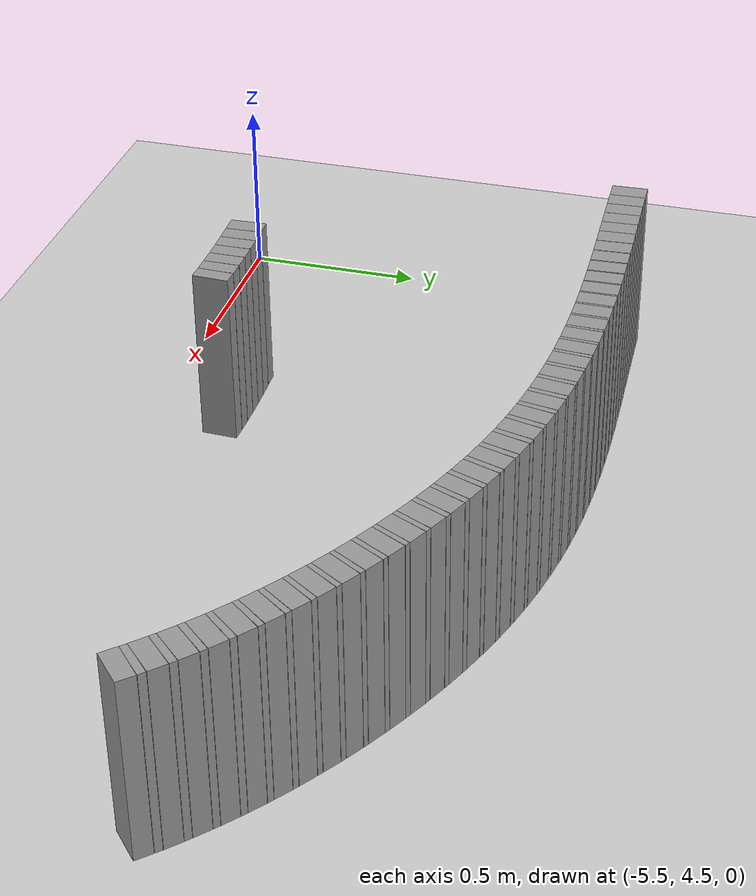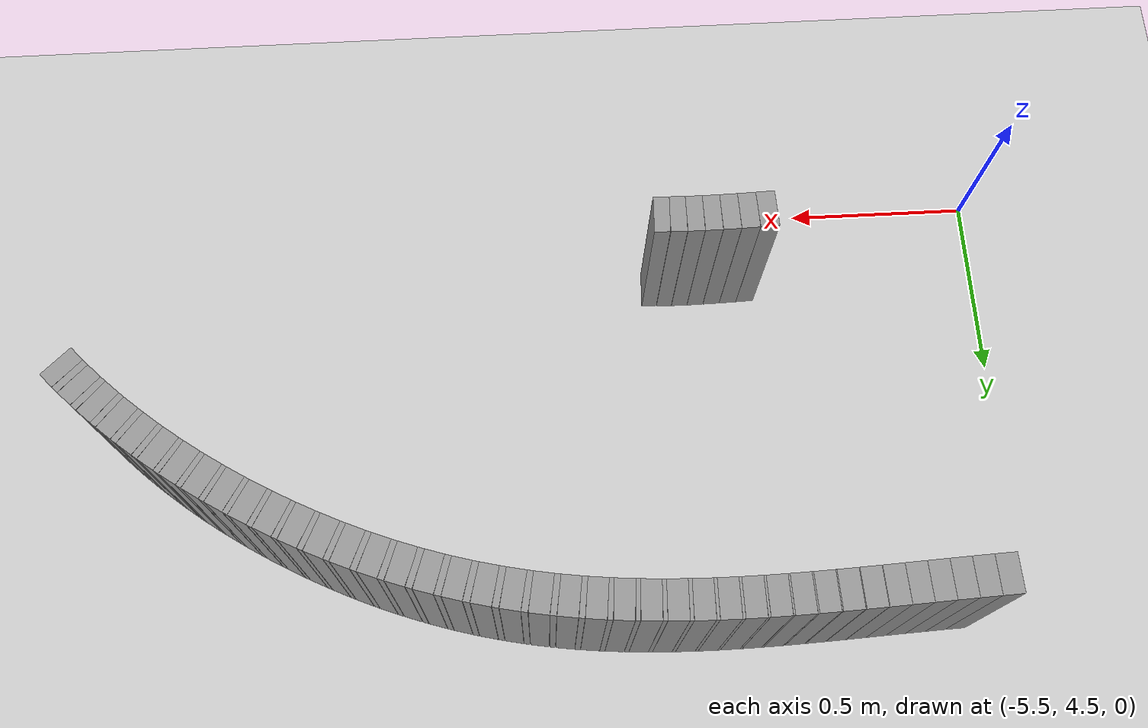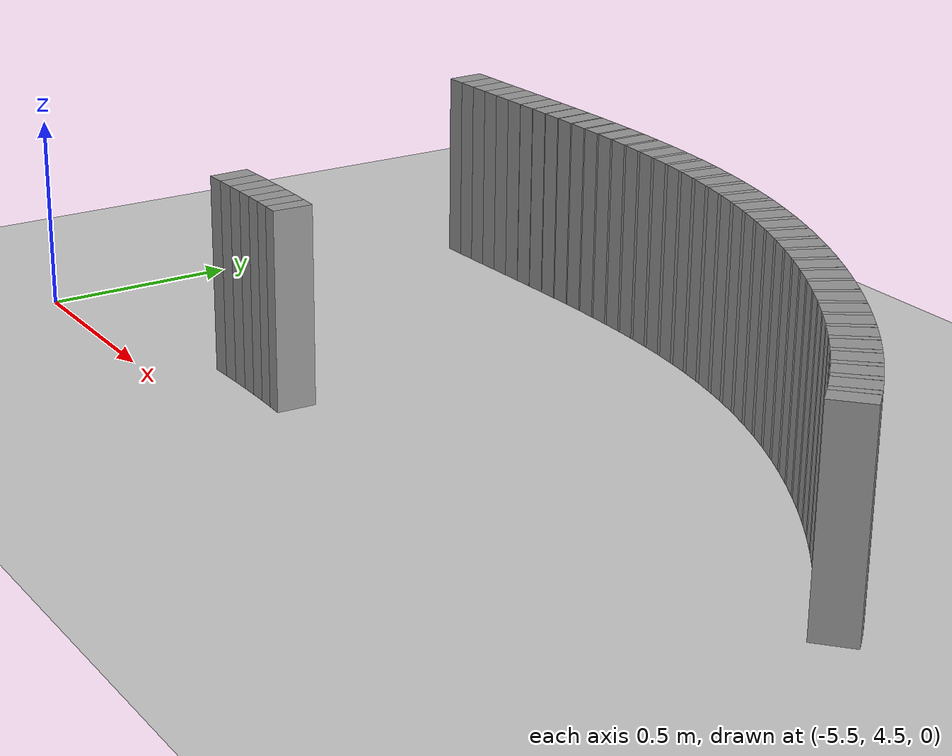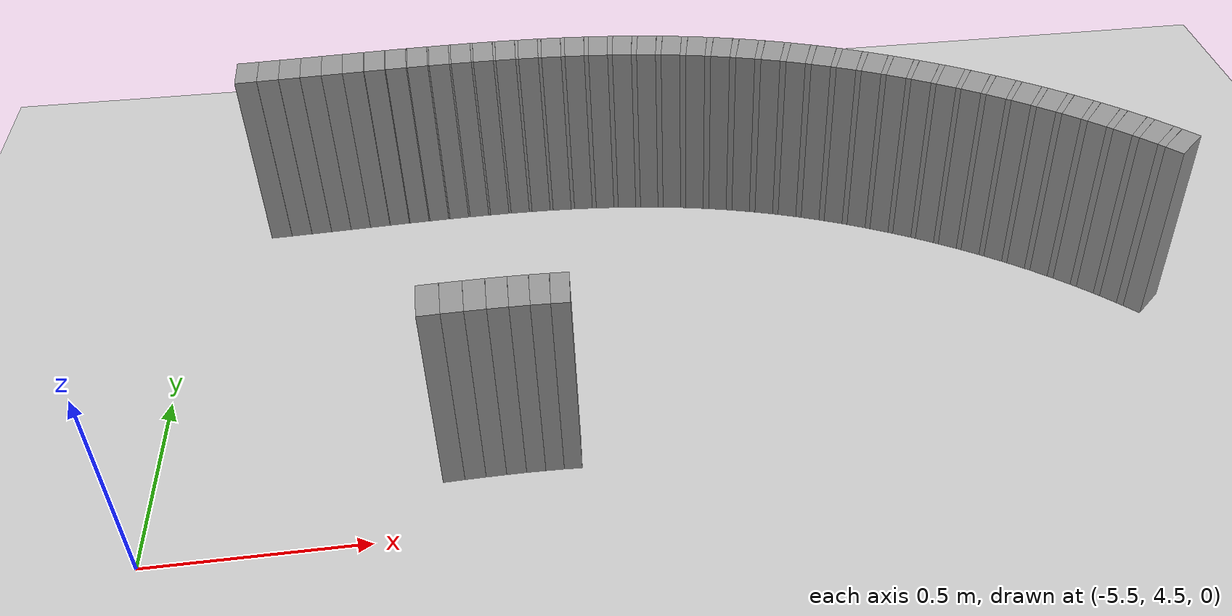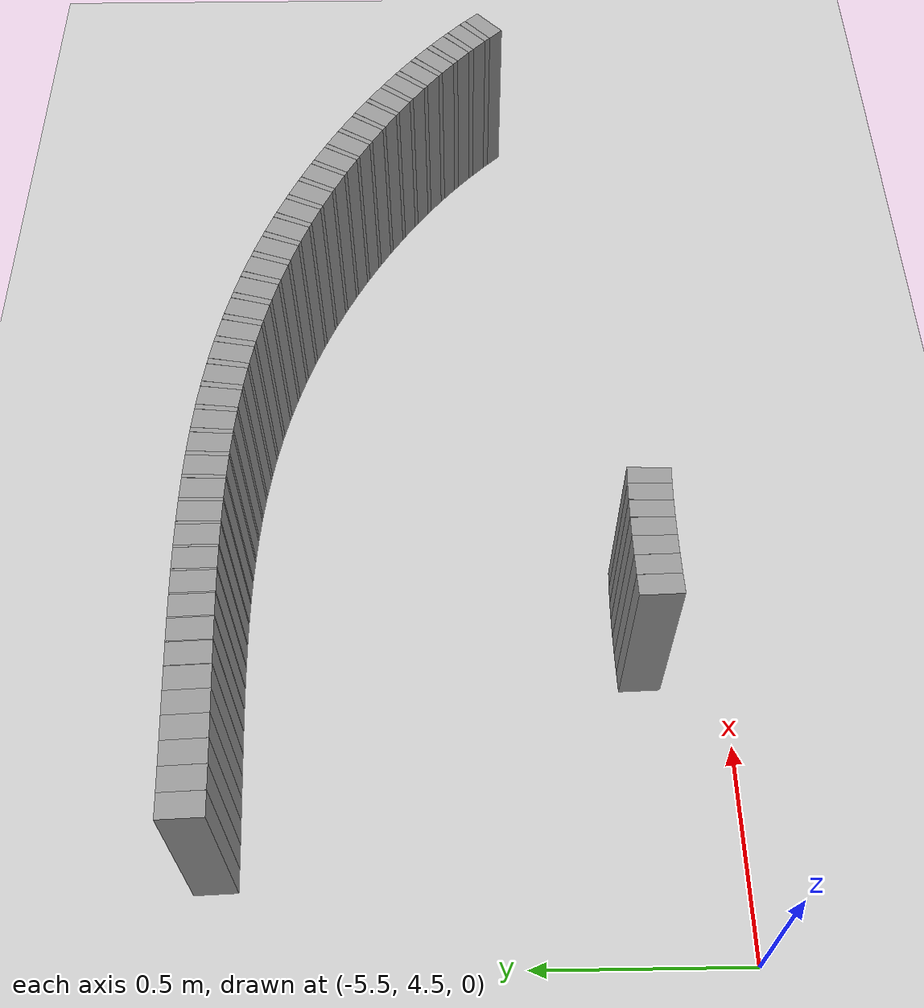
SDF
<sdf version="1.6">
 <world name="default">
  <include><uri>model://ground_plane</uri></include>
  <include><uri>model://sun</uri></include>
  <model name="wall_754_outward">
   <static>true</static>
   <link name="link">
    <collision name="collision">
     <geometry><box><size>0.05470670281031291 0.1 0.5</size></box></geometry>
    </collision>
    <visual name="visual">
     <geometry><box><size>0.05470670281031291 0.1 0.5</size></box></geometry>
     <material>
      <script><uri>file://media/materials/scripts/gazebo.material</uri><name>Gazebo/Gray</name></script>
     </material>
    </visual>
   </link>
   <pose>-5.3006299219813915 5.68774254608875 0.25 0 0 0.04072582569748732</pose>
  </model>
  <model name="wall_755_outward">
   <static>true</static>
   <link name="link">
    <collision name="collision">
     <geometry><box><size>0.054097679042840574 0.1 0.5</size></box></geometry>
    </collision>
    <visual name="visual">
     <geometry><box><size>0.054097679042840574 0.1 0.5</size></box></geometry>
     <material>
      <script><uri>file://media/materials/scripts/gazebo.material</uri><name>Gazebo/Gray</name></script>
     </material>
    </visual>
   </link>
   <pose>-5.246276919904404 5.690053437662764 0.25 0 0 0.04427557462406261</pose>
  </model>
  <model name="wall_756_outward">
   <static>true</static>
   <link name="link">
    <collision name="collision">
     <geometry><box><size>0.053771569483744175 0.1 0.5</size></box></geometry>
    </collision>
    <visual name="visual">
     <geometry><box><size>0.053771569483744175 0.1 0.5</size></box></geometry>
     <material>
      <script><uri>file://media/materials/scripts/gazebo.material</uri><name>Gazebo/Gray</name></script>
     </material>
    </visual>
   </link>
   <pose>-5.192398618591268 5.692516473386265 0.25 0 0 0.047098947879027526</pose>
  </model>
  <model name="wall_757_outward">
   <static>true</static>
   <link name="link">
    <collision name="collision">
     <geometry><box><size>0.053716895575604086 0.1 0.5</size></box></geometry>
    </collision>
    <visual name="visual">
     <geometry><box><size>0.053716895575604086 0.1 0.5</size></box></geometry>
     <material>
      <script><uri>file://media/materials/scripts/gazebo.material</uri><name>Gazebo/Gray</name></script>
     </material>
    </visual>
   </link>
   <pose>-5.138716354830655 5.695096134060477 0.25 0 0 0.04893660164620295</pose>
  </model>
  <model name="wall_758_outward">
   <static>true</static>
   <link name="link">
    <collision name="collision">
     <geometry><box><size>0.05370066168871063 0.1 0.5</size></box></geometry>
    </collision>
    <visual name="visual">
     <geometry><box><size>0.05370066168871063 0.1 0.5</size></box></geometry>
     <material>
      <script><uri>file://media/materials/scripts/gazebo.material</uri><name>Gazebo/Gray</name></script>
     </material>
    </visual>
   </link>
   <pose>-5.08507265863831 5.697739334150921 0.25 0 0 0.04953038305368396</pose>
  </model>
  <model name="wall_759_outward">
   <static>true</static>
   <link name="link">
    <collision name="collision">
     <geometry><box><size>0.0539126687379248 0.1 0.5</size></box></geometry>
    </collision>
    <visual name="visual">
     <geometry><box><size>0.0539126687379248 0.1 0.5</size></box></geometry>
     <material>
      <script><uri>file://media/materials/scripts/gazebo.material</uri><name>Gazebo/Gray</name></script>
     </material>
    </visual>
   </link>
   <pose>-5.031330870959936 5.700380729509412 0.25 0 0 0.04869172711507328</pose>
  </model>
  <model name="wall_760_outward">
   <static>true</static>
   <link name="link">
    <collision name="collision">
     <geometry><box><size>0.0012136078021173552 0.1 0.5</size></box></geometry>
    </collision>
    <visual name="visual">
     <geometry><box><size>0.0012136078021173552 0.1 0.5</size></box></geometry>
     <material>
      <script><uri>file://media/materials/scripts/gazebo.material</uri><name>Gazebo/Gray</name></script>
     </material>
    </visual>
   </link>
   <pose>-5.003800365248731 5.7017215584900445 0.25 0 0 0.047474831902274174</pose>
  </model>
  <model name="wall_761_outward">
   <static>true</static>
   <link name="link">
    <collision name="collision">
     <geometry><box><size>0.053227476023521056 0.1 0.5</size></box></geometry>
    </collision>
    <visual name="visual">
     <geometry><box><size>0.053227476023521056 0.1 0.5</size></box></geometry>
     <material>
      <script><uri>file://media/materials/scripts/gazebo.material</uri><name>Gazebo/Gray</name></script>
     </material>
    </visual>
   </link>
   <pose>-4.976608979995815 5.702981100577318 0.25 0 0 0.04626122380237999</pose>
  </model>
  <model name="wall_762_outward">
   <static>true</static>
   <link name="link">
    <collision name="collision">
     <geometry><box><size>0.002048040256482124 0.1 0.5</size></box></geometry>
    </collision>
    <visual name="visual">
     <geometry><box><size>0.002048040256482124 0.1 0.5</size></box></geometry>
     <material>
      <script><uri>file://media/materials/scripts/gazebo.material</uri><name>Gazebo/Gray</name></script>
     </material>
    </visual>
   </link>
   <pose>-4.9490006955357675 5.704257106010834 0.25 0 0 0.044213182113997794</pose>
  </model>
  <model name="wall_763_outward">
   <static>true</static>
   <link name="link">
    <collision name="collision">
     <geometry><box><size>0.05302729104950149 0.1 0.5</size></box></geometry>
    </collision>
    <visual name="visual">
     <geometry><box><size>0.05302729104950149 0.1 0.5</size></box></geometry>
     <material>
      <script><uri>file://media/materials/scripts/gazebo.material</uri><name>Gazebo/Gray</name></script>
     </material>
    </visual>
   </link>
   <pose>-4.921487596400862 5.705419986798684 0.25 0 0 0.04216514042594674</pose>
  </model>
  <model name="wall_764_outward">
   <static>true</static>
   <link name="link">
    <collision name="collision">
     <geometry><box><size>0.002923205752040813 0.1 0.5</size></box></geometry>
    </collision>
    <visual name="visual">
     <geometry><box><size>0.002923205752040813 0.1 0.5</size></box></geometry>
     <material>
      <script><uri>file://media/materials/scripts/gazebo.material</uri><name>Gazebo/Gray</name></script>
     </material>
    </visual>
   </link>
   <pose>-4.893537039039133 5.7065949485462735 0.25 0 0 0.039241930510469474</pose>
  </model>
  <model name="wall_765_outward">
   <static>true</static>
   <link name="link">
    <collision name="collision">
     <geometry><box><size>0.05286327818190272 0.1 0.5</size></box></geometry>
    </collision>
    <visual name="visual">
     <geometry><box><size>0.05286327818190272 0.1 0.5</size></box></geometry>
     <material>
      <script><uri>file://media/materials/scripts/gazebo.material</uri><name>Gazebo/Gray</name></script>
     </material>
    </visual>
   </link>
   <pose>-4.8656623527137794 5.707612042234267 0.25 0 0 0.03631872059542236</pose>
  </model>
  <model name="wall_766_outward">
   <static>true</static>
   <link name="link">
    <collision name="collision">
     <geometry><box><size>0.0038376359530731046 0.1 0.5</size></box></geometry>
    </collision>
    <visual name="visual">
     <geometry><box><size>0.0038376359530731046 0.1 0.5</size></box></geometry>
     <material>
      <script><uri>file://media/materials/scripts/gazebo.material</uri><name>Gazebo/Gray</name></script>
     </material>
    </visual>
   </link>
   <pose>-4.837330338156832 5.708634108835901 0.25 0 0 0.03248107522261644</pose>
  </model>
  <model name="wall_767_outward">
   <static>true</static>
   <link name="link">
    <collision name="collision">
     <geometry><box><size>0.05270675990037994 0.1 0.5</size></box></geometry>
    </collision>
    <visual name="visual">
     <geometry><box><size>0.05270675990037994 0.1 0.5</size></box></geometry>
     <material>
      <script><uri>file://media/materials/scripts/gazebo.material</uri><name>Gazebo/Gray</name></script>
     </material>
    </visual>
   </link>
   <pose>-4.809069962361463 5.709451171123465 0.25 0 0 0.02864342984962088</pose>
  </model>
  <model name="wall_768_outward">
   <static>true</static>
   <link name="link">
    <collision name="collision">
     <geometry><box><size>0.004793854797441563 0.1 0.5</size></box></geometry>
    </collision>
    <visual name="visual">
     <geometry><box><size>0.004793854797441563 0.1 0.5</size></box></geometry>
     <material>
      <script><uri>file://media/materials/scripts/gazebo.material</uri><name>Gazebo/Gray</name></script>
     </material>
    </visual>
   </link>
   <pose>-4.7803311466924505 5.710263079335204 0.25 0 0 0.023849556690694888</pose>
  </model>
  <model name="wall_769_outward">
   <static>true</static>
   <link name="link">
    <collision name="collision">
     <geometry><box><size>0.052538078603581964 0.1 0.5</size></box></geometry>
    </collision>
    <visual name="visual">
     <geometry><box><size>0.052538078603581964 0.1 0.5</size></box></geometry>
     <material>
      <script><uri>file://media/materials/scripts/gazebo.material</uri><name>Gazebo/Gray</name></script>
     </material>
    </visual>
   </link>
   <pose>-4.751670630897707 5.710820783777397 0.25 0 0 0.01905568353176244</pose>
  </model>
  <model name="wall_770_outward">
   <static>true</static>
   <link name="link">
    <collision name="collision">
     <geometry><box><size>0.005804564015766127 0.1 0.5</size></box></geometry>
    </collision>
    <visual name="visual">
     <geometry><box><size>0.005804564015766127 0.1 0.5</size></box></geometry>
     <material>
      <script><uri>file://media/materials/scripts/gazebo.material</uri><name>Gazebo/Gray</name></script>
     </material>
    </visual>
   </link>
   <pose>-4.722504333642352 5.711359785248543 0.25 0 0 0.013251086919930636</pose>
  </model>
  <model name="wall_771_outward">
   <static>true</static>
   <link name="link">
    <collision name="collision">
     <geometry><box><size>0.052343011538133616 0.1 0.5</size></box></geometry>
    </collision>
    <visual name="visual">
     <geometry><box><size>0.052343011538133616 0.1 0.5</size></box></geometry>
     <material>
      <script><uri>file://media/materials/scripts/gazebo.material</uri><name>Gazebo/Gray</name></script>
     </material>
    </visual>
   </link>
   <pose>-4.693431526273911 5.711593126577202 0.25 0 0 0.007446490308254661</pose>
  </model>
  <model name="wall_772_outward">
   <static>true</static>
   <link name="link">
    <collision name="collision">
     <geometry><box><size>0.006888638585046518 0.1 0.5</size></box></geometry>
    </collision>
    <visual name="visual">
     <geometry><box><size>0.006888638585046518 0.1 0.5</size></box></geometry>
     <material>
      <script><uri>file://media/materials/scripts/gazebo.material</uri><name>Gazebo/Gray</name></script>
     </material>
    </visual>
   </link>
   <pose>-4.663816427352646 5.7117899318718885 0.25 0 0 0.0005577972405423532</pose>
  </model>
  <model name="wall_773_outward">
   <static>true</static>
   <link name="link">
    <collision name="collision">
     <geometry><box><size>0.052117274290538244 0.1 0.5</size></box></geometry>
    </collision>
    <visual name="visual">
     <geometry><box><size>0.052117274290538244 0.1 0.5</size></box></geometry>
     <material>
      <script><uri>file://media/materials/scripts/gazebo.material</uri><name>Gazebo/Gray</name></script>
     </material>
    </visual>
   </link>
   <pose>-4.634313993667179 5.711626879688456 0.25 0 0 -0.006330895827137901</pose>
  </model>
  <model name="wall_774_outward">
   <static>true</static>
   <link name="link">
    <collision name="collision">
     <geometry><box><size>0.008057580469375289 0.1 0.5</size></box></geometry>
    </collision>
    <visual name="visual">
     <geometry><box><size>0.008057580469375289 0.1 0.5</size></box></geometry>
     <material>
      <script><uri>file://media/materials/scripts/gazebo.material</uri><name>Gazebo/Gray</name></script>
     </material>
    </visual>
   </link>
   <pose>-4.604227505538275 5.711403939769443 0.25 0 0 -0.014388563488224376</pose>
  </model>
  <model name="wall_775_outward">
   <static>true</static>
   <link name="link">
    <collision name="collision">
     <geometry><box><size>0.05186382484960048 0.1 0.5</size></box></geometry>
    </collision>
    <visual name="visual">
     <geometry><box><size>0.05186382484960048 0.1 0.5</size></box></geometry>
     <material>
      <script><uri>file://media/materials/scripts/gazebo.material</uri><name>Gazebo/Gray</name></script>
     </material>
    </visual>
   </link>
   <pose>-4.5742737523194785 5.710763948441915 0.25 0 0 -0.022446231149388873</pose>
  </model>
  <model name="wall_776_outward">
   <static>true</static>
   <link name="link">
    <collision name="collision">
     <geometry><box><size>0.009299625469481853 0.1 0.5</size></box></geometry>
    </collision>
    <visual name="visual">
     <geometry><box><size>0.009299625469481853 0.1 0.5</size></box></geometry>
     <material>
      <script><uri>file://media/materials/scripts/gazebo.material</uri><name>Gazebo/Gray</name></script>
     </material>
    </visual>
   </link>
   <pose>-4.543700902428359 5.710034335499582 0.25 0 0 -0.031745990667337264</pose>
  </model>
  <model name="wall_777_outward">
   <static>true</static>
   <link name="link">
    <collision name="collision">
     <geometry><box><size>0.05159517817791549 0.1 0.5</size></box></geometry>
    </collision>
    <visual name="visual">
     <geometry><box><size>0.05159517817791549 0.1 0.5</size></box></geometry>
     <material>
      <script><uri>file://media/materials/scripts/gazebo.material</uri><name>Gazebo/Gray</name></script>
     </material>
    </visual>
   </link>
   <pose>-4.513277571706778 5.708828163284427 0.25 0 0 -0.04104575018539464</pose>
  </model>
  <model name="wall_778_outward">
   <static>true</static>
   <link name="link">
    <collision name="collision">
     <geometry><box><size>0.010608063590137357 0.1 0.5</size></box></geometry>
    </collision>
    <visual name="visual">
     <geometry><box><size>0.010608063590137357 0.1 0.5</size></box></geometry>
     <material>
      <script><uri>file://media/materials/scripts/gazebo.material</uri><name>Gazebo/Gray</name></script>
     </material>
    </visual>
   </link>
   <pose>-4.482204753431254 5.7074957264793795 0.25 0 0 -0.0516540127416548</pose>
  </model>
  <model name="wall_779_outward">
   <static>true</static>
   <link name="link">
    <collision name="collision">
     <geometry><box><size>0.05132695147043053 0.1 0.5</size></box></geometry>
    </collision>
    <visual name="visual">
     <geometry><box><size>0.05132695147043053 0.1 0.5</size></box></geometry>
     <material>
      <script><uri>file://media/materials/scripts/gazebo.material</uri><name>Gazebo/Gray</name></script>
     </material>
    </visual>
   </link>
   <pose>-4.45129404760072 5.705625039558445 0.25 0 0 -0.062262275297866786</pose>
  </model>
  <model name="wall_780_outward">
   <static>true</static>
   <link name="link">
    <collision name="collision">
     <geometry><box><size>0.01194903492020911 0.1 0.5</size></box></geometry>
    </collision>
    <visual name="visual">
     <geometry><box><size>0.01194903492020911 0.1 0.5</size></box></geometry>
     <material>
      <script><uri>file://media/materials/scripts/gazebo.material</uri><name>Gazebo/Gray</name></script>
     </material>
    </visual>
   </link>
   <pose>-4.419722226098858 5.703585233740659 0.25 0 0 -0.07421159458247423</pose>
  </model>
  <model name="wall_781_outward">
   <static>true</static>
   <link name="link">
    <collision name="collision">
     <geometry><box><size>0.05108162824380521 0.1 0.5</size></box></geometry>
    </collision>
    <visual name="visual">
     <geometry><box><size>0.05108162824380521 0.1 0.5</size></box></geometry>
     <material>
      <script><uri>file://media/materials/scripts/gazebo.material</uri><name>Gazebo/Gray</name></script>
     </material>
    </visual>
   </link>
   <pose>-4.388318083954399 5.700944364030533 0.25 0 0 -0.08616091386698156</pose>
  </model>
  <model name="wall_782_outward">
   <static>true</static>
   <link name="link">
    <collision name="collision">
     <geometry><box><size>0.013267996362830194 0.1 0.5</size></box></geometry>
    </collision>
    <visual name="visual">
     <geometry><box><size>0.013267996362830194 0.1 0.5</size></box></geometry>
     <material>
      <script><uri>file://media/materials/scripts/gazebo.material</uri><name>Gazebo/Gray</name></script>
     </material>
    </visual>
   </link>
   <pose>-4.35627078218779 5.698087938440443 0.25 0 0 -0.09942929954301148</pose>
  </model>
  <model name="wall_783_outward">
   <static>true</static>
   <link name="link">
    <collision name="collision">
     <geometry><box><size>0.05088175062184712 0.1 0.5</size></box></geometry>
    </collision>
    <visual name="visual">
     <geometry><box><size>0.05088175062184712 0.1 0.5</size></box></geometry>
     <material>
      <script><uri>file://media/materials/scripts/gazebo.material</uri><name>Gazebo/Gray</name></script>
     </material>
    </visual>
   </link>
   <pose>-4.3243900625661436 5.694568348465466 0.25 0 0 -0.11269768521914508</pose>
  </model>
  <model name="wall_784_outward">
   <static>true</static>
   <link name="link">
    <collision name="collision">
     <geometry><box><size>0.014487379566992429 0.1 0.5</size></box></geometry>
    </collision>
    <visual name="visual">
     <geometry><box><size>0.014487379566992429 0.1 0.5</size></box></geometry>
     <material>
      <script><uri>file://media/materials/scripts/gazebo.material</uri><name>Gazebo/Gray</name></script>
     </material>
    </visual>
   </link>
   <pose>-4.291925394523899 5.690788474973518 0.25 0 0 -0.12718557161261015</pose>
  </model>
  <model name="wall_785_outward">
   <static>true</static>
   <link name="link">
    <collision name="collision">
     <geometry><box><size>0.05074623195494807 0.1 0.5</size></box></geometry>
    </collision>
    <visual name="visual">
     <geometry><box><size>0.05074623195494807 0.1 0.5</size></box></geometry>
     <material>
      <script><uri>file://media/materials/scripts/gazebo.material</uri><name>Gazebo/Gray</name></script>
     </material>
    </visual>
   </link>
   <pose>-4.259621308365039 5.686286979909757 0.25 0 0 -0.1416734580060665</pose>
  </model>
  <model name="wall_786_outward">
   <static>true</static>
   <link name="link">
    <collision name="collision">
     <geometry><box><size>0.015555456152363298 0.1 0.5</size></box></geometry>
    </collision>
    <visual name="visual">
     <geometry><box><size>0.015555456152363298 0.1 0.5</size></box></geometry>
     <material>
      <script><uri>file://media/materials/scripts/gazebo.material</uri><name>Gazebo/Gray</name></script>
     </material>
    </visual>
   </link>
   <pose>-4.22682061449065 5.681486439535501 0.25 0 0 -0.15722954155815158</pose>
  </model>
  <model name="wall_787_outward">
   <static>true</static>
   <link name="link">
    <collision name="collision">
     <geometry><box><size>0.05068966524538391 0.1 0.5</size></box></geometry>
    </collision>
    <visual name="visual">
     <geometry><box><size>0.05068966524538391 0.1 0.5</size></box></geometry>
     <material>
      <script><uri>file://media/materials/scripts/gazebo.material</uri><name>Gazebo/Gray</name></script>
     </material>
    </visual>
   </link>
   <pose>-4.194171386060296 5.675911118159842 0.25 0 0 -0.17278562511016382</pose>
  </model>
  <model name="wall_788_outward">
   <static>true</static>
   <link name="link">
    <collision name="collision">
     <geometry><box><size>0.01639506657148066 0.1 0.5</size></box></geometry>
    </collision>
    <visual name="visual">
     <geometry><box><size>0.01639506657148066 0.1 0.5</size></box></geometry>
     <material>
      <script><uri>file://media/materials/scripts/gazebo.material</uri><name>Gazebo/Gray</name></script>
     </material>
    </visual>
   </link>
   <pose>-4.16115266948189 5.670012066065841 0.25 0 0 -0.18918142626455825</pose>
  </model>
  <model name="wall_789_outward">
   <static>true</static>
   <link name="link">
    <collision name="collision">
     <geometry><box><size>0.05072153508281689 0.1 0.5</size></box></geometry>
    </collision>
    <visual name="visual">
     <geometry><box><size>0.05072153508281689 0.1 0.5</size></box></geometry>
     <material>
      <script><uri>file://media/materials/scripts/gazebo.material</uri><name>Gazebo/Gray</name></script>
     </material>
    </visual>
   </link>
   <pose>-4.128274638582419 5.663293528068493 0.25 0 0 -0.2055772274190114</pose>
  </model>
  <model name="wall_790_outward">
   <static>true</static>
   <link name="link">
    <collision name="collision">
     <geometry><box><size>0.016948883953568413 0.1 0.5</size></box></geometry>
    </collision>
    <visual name="visual">
     <geometry><box><size>0.016948883953568413 0.1 0.5</size></box></geometry>
     <material>
      <script><uri>file://media/materials/scripts/gazebo.material</uri><name>Gazebo/Gray</name></script>
     </material>
    </visual>
   </link>
   <pose>-4.095182398002649 5.656246310627052 0.25 0 0 -0.2225269229467355</pose>
  </model>
  <model name="wall_791_outward">
   <static>true</static>
   <link name="link">
    <collision name="collision">
     <geometry><box><size>0.05083940444672777 0.1 0.5</size></box></geometry>
    </collision>
    <visual name="visual">
     <geometry><box><size>0.05083940444672777 0.1 0.5</size></box></geometry>
     <material>
      <script><uri>file://media/materials/scripts/gazebo.material</uri><name>Gazebo/Gray</name></script>
     </material>
    </visual>
   </link>
   <pose>-4.0622226301773665 5.6483466378744005 0.25 0 0 -0.23947661847448246</pose>
  </model>
  <model name="wall_792_outward">
   <static>true</static>
   <link name="link">
    <collision name="collision">
     <geometry><box><size>0.017216249648809863 0.1 0.5</size></box></geometry>
    </collision>
    <visual name="visual">
     <geometry><box><size>0.017216249648809863 0.1 0.5</size></box></geometry>
     <material>
      <script><uri>file://media/materials/scripts/gazebo.material</uri><name>Gazebo/Gray</name></script>
     </material>
    </visual>
   </link>
   <pose>-4.029202272218141 5.640131766473027 0.25 0 0 -0.25669371871736185</pose>
  </model>
  <model name="wall_793_outward">
   <static>true</static>
   <link name="link">
    <collision name="collision">
     <geometry><box><size>0.051031347646179066 0.1 0.5</size></box></geometry>
    </collision>
    <visual name="visual">
     <geometry><box><size>0.051031347646179066 0.1 0.5</size></box></geometry>
     <material>
      <script><uri>file://media/materials/scripts/gazebo.material</uri><name>Gazebo/Gray</name></script>
     </material>
    </visual>
   </link>
   <pose>-3.996311735933641 5.631044349322247 0.25 0 0 -0.27391081896018843</pose>
  </model>
  <model name="wall_794_outward">
   <static>true</static>
   <link name="link">
    <collision name="collision">
     <geometry><box><size>0.017192357453203494 0.1 0.5</size></box></geometry>
    </collision>
    <visual name="visual">
     <geometry><box><size>0.017192357453203494 0.1 0.5</size></box></geometry>
     <material>
      <script><uri>file://media/materials/scripts/gazebo.material</uri><name>Gazebo/Gray</name></script>
     </material>
    </visual>
   </link>
   <pose>-3.9635127596655186 5.621675208259651 0.25 0 0 -0.29110402347076964</pose>
  </model>
  <model name="wall_795_outward">
   <static>true</static>
   <link name="link">
    <collision name="collision">
     <geometry><box><size>0.051277507684058254 0.1 0.5</size></box></geometry>
    </collision>
    <visual name="visual">
     <geometry><box><size>0.051277507684058254 0.1 0.5</size></box></geometry>
     <material>
      <script><uri>file://media/materials/scripts/gazebo.material</uri><name>Gazebo/Gray</name></script>
     </material>
    </visual>
   </link>
   <pose>-3.9308483143629886 5.611428283236822 0.25 0 0 -0.3082972279812897</pose>
  </model>
  <model name="wall_796_outward">
   <static>true</static>
   <link name="link">
    <collision name="collision">
     <geometry><box><size>0.016919935380718096 0.1 0.5</size></box></geometry>
    </collision>
    <visual name="visual">
     <geometry><box><size>0.016919935380718096 0.1 0.5</size></box></geometry>
     <material>
      <script><uri>file://media/materials/scripts/gazebo.material</uri><name>Gazebo/Gray</name></script>
     </material>
    </visual>
   </link>
   <pose>-3.898401880339251 5.600945457810028 0.25 0 0 -0.3252179707844851</pose>
  </model>
  <model name="wall_797_outward">
   <static>true</static>
   <link name="link">
    <collision name="collision">
     <geometry><box><size>0.05154905468149878 0.1 0.5</size></box></geometry>
    </collision>
    <visual name="visual">
     <geometry><box><size>0.05154905468149878 0.1 0.5</size></box></geometry>
     <material>
      <script><uri>file://media/materials/scripts/gazebo.material</uri><name>Gazebo/Gray</name></script>
     </material>
    </visual>
   </link>
   <pose>-3.8661047577260406 5.589594947172906 0.25 0 0 -0.34213871358758347</pose>
  </model>
  <model name="wall_798_outward">
   <static>true</static>
   <link name="link">
    <collision name="collision">
     <geometry><box><size>0.01647703830524374 0.1 0.5</size></box></geometry>
    </collision>
    <visual name="visual">
     <geometry><box><size>0.01647703830524374 0.1 0.5</size></box></geometry>
     <material>
      <script><uri>file://media/materials/scripts/gazebo.material</uri><name>Gazebo/Gray</name></script>
     </material>
    </visual>
   </link>
   <pose>-3.8341097288839157 5.578055978094596 0.25 0 0 -0.3586164975500699</pose>
  </model>
  <model name="wall_799_outward">
   <static>true</static>
   <link name="link">
    <collision name="collision">
     <geometry><box><size>0.05181211576678386 0.1 0.5</size></box></geometry>
    </collision>
    <visual name="visual">
     <geometry><box><size>0.05181211576678386 0.1 0.5</size></box></geometry>
     <material>
      <script><uri>file://media/materials/scripts/gazebo.material</uri><name>Gazebo/Gray</name></script>
     </material>
    </visual>
   </link>
   <pose>-3.802290427531662 5.565673480186381 0.25 0 0 -0.3750942815126495</pose>
  </model>
  <model name="wall_800_outward">
   <static>true</static>
   <link name="link">
    <collision name="collision">
     <geometry><box><size>0.01593200127320829 0.1 0.5</size></box></geometry>
    </collision>
    <visual name="visual">
     <geometry><box><size>0.01593200127320829 0.1 0.5</size></box></geometry>
     <material>
      <script><uri>file://media/materials/scripts/gazebo.material</uri><name>Gazebo/Gray</name></script>
     </material>
    </visual>
   </link>
   <pose>-3.7708208258786886 5.553146384160972 0.25 0 0 -0.3910269568626263</pose>
  </model>
  <model name="wall_801_outward">
   <static>true</static>
   <link name="link">
    <collision name="collision">
     <geometry><box><size>0.052033309301732535 0.1 0.5</size></box></geometry>
    </collision>
    <visual name="visual">
     <geometry><box><size>0.052033309301732535 0.1 0.5</size></box></geometry>
     <material>
      <script><uri>file://media/materials/scripts/gazebo.material</uri><name>Gazebo/Gray</name></script>
     </material>
    </visual>
   </link>
   <pose>-3.7395642783579044 5.539812349195075 0.25 0 0 -0.40695963221261316</pose>
  </model>
  <model name="wall_802_outward">
   <static>true</static>
   <link name="link">
    <collision name="collision">
     <geometry><box><size>0.015364441781334594 0.1 0.5</size></box></geometry>
    </collision>
    <visual name="visual">
     <geometry><box><size>0.015364441781334594 0.1 0.5</size></box></geometry>
     <material>
      <script><uri>file://media/materials/scripts/gazebo.material</uri><name>Gazebo/Gray</name></script>
     </material>
    </visual>
   </link>
   <pose>-3.70866519297403 5.526365656259216 0.25 0 0 -0.4223246785620134</pose>
  </model>
  <model name="wall_803_outward">
   <static>true</static>
   <link name="link">
    <collision name="collision">
     <geometry><box><size>0.05217903468702439 0.1 0.5</size></box></geometry>
    </collision>
    <visual name="visual">
     <geometry><box><size>0.05217903468702439 0.1 0.5</size></box></geometry>
     <material>
      <script><uri>file://media/materials/scripts/gazebo.material</uri><name>Gazebo/Gray</name></script>
     </material>
    </visual>
   </link>
   <pose>-3.6780277988057875 5.5121588598047015 0.25 0 0 -0.43768972491152025</pose>
  </model>
  <model name="wall_804_outward">
   <static>true</static>
   <link name="link">
    <collision name="collision">
     <geometry><box><size>0.014864275594083263 0.1 0.5</size></box></geometry>
    </collision>
    <visual name="visual">
     <geometry><box><size>0.014864275594083263 0.1 0.5</size></box></geometry>
     <material>
      <script><uri>file://media/materials/scripts/gazebo.material</uri><name>Gazebo/Gray</name></script>
     </material>
    </visual>
   </link>
   <pose>-3.6477136875844756 5.497851058432783 0.25 0 0 -0.45255454792881683</pose>
  </model>
  <model name="wall_805_outward">
   <static>true</static>
   <link name="link">
    <collision name="collision">
     <geometry><box><size>0.05222377300262657 0.1 0.5</size></box></geometry>
    </collision>
    <visual name="visual">
     <geometry><box><size>0.05222377300262657 0.1 0.5</size></box></geometry>
     <material>
      <script><uri>file://media/materials/scripts/gazebo.material</uri><name>Gazebo/Gray</name></script>
     </material>
    </visual>
   </link>
   <pose>-3.6177187504354626 5.4828356519882355 0.25 0 0 -0.4674193709460384</pose>
  </model>
  <model name="wall_806_outward">
   <static>true</static>
   <link name="link">
    <collision name="collision">
     <geometry><box><size>0.014491116755006646 0.1 0.5</size></box></geometry>
    </collision>
    <visual name="visual">
     <geometry><box><size>0.014491116755006646 0.1 0.5</size></box></geometry>
     <material>
      <script><uri>file://media/materials/scripts/gazebo.material</uri><name>Gazebo/Gray</name></script>
     </material>
    </visual>
   </link>
   <pose>-3.587987412391385 5.467711931040659 0.25 0 0 -0.48191099491985373</pose>
  </model>
  <model name="wall_807_outward">
   <static>true</static>
   <link name="link">
    <collision name="collision">
     <geometry><box><size>0.05214917180498347 0.1 0.5</size></box></geometry>
    </collision>
    <visual name="visual">
     <geometry><box><size>0.05214917180498347 0.1 0.5</size></box></geometry>
     <material>
      <script><uri>file://media/materials/scripts/gazebo.material</uri><name>Gazebo/Gray</name></script>
     </material>
    </visual>
   </link>
   <pose>-3.558639620569013 5.451935383411509 0.25 0 0 -0.4964026188936905</pose>
  </model>
  <model name="wall_808_outward">
   <static>true</static>
   <link name="link">
    <collision name="collision">
     <geometry><box><size>0.01429761700045812 0.1 0.5</size></box></geometry>
    </collision>
    <visual name="visual">
     <geometry><box><size>0.01429761700045812 0.1 0.5</size></box></geometry>
     <material>
      <script><uri>file://media/materials/scripts/gazebo.material</uri><name>Gazebo/Gray</name></script>
     </material>
    </visual>
   </link>
   <pose>-3.5294755602307424 5.436022702506344 0.25 0 0 -0.5107007230631739</pose>
  </model>
  <model name="wall_809_outward">
   <static>true</static>
   <link name="link">
    <collision name="collision">
     <geometry><box><size>0.05194738704809089 0.1 0.5</size></box></geometry>
    </collision>
    <visual name="visual">
     <geometry><box><size>0.05194738704809089 0.1 0.5</size></box></geometry>
     <material>
      <script><uri>file://media/materials/scripts/gazebo.material</uri><name>Gazebo/Gray</name></script>
     </material>
    </visual>
   </link>
   <pose>-3.500763249724639 5.419510119226819 0.25 0 0 -0.524998827232687</pose>
  </model>
  <model name="wall_810_outward">
   <static>true</static>
   <link name="link">
    <collision name="collision">
     <geometry><box><size>0.014314770339410442 0.1 0.5</size></box></geometry>
    </collision>
    <visual name="visual">
     <geometry><box><size>0.014314770339410442 0.1 0.5</size></box></geometry>
     <material>
      <script><uri>file://media/materials/scripts/gazebo.material</uri><name>Gazebo/Gray</name></script>
     </material>
    </visual>
   </link>
   <pose>-3.4721461015747597 5.40281613494499 0.25 0 0 -0.5393140864967612</pose>
  </model>
  <model name="wall_811_outward">
   <static>true</static>
   <link name="link">
    <collision name="collision">
     <geometry><box><size>0.05162178617623861 0.1 0.5</size></box></geometry>
    </collision>
    <visual name="visual">
     <geometry><box><size>0.05162178617623861 0.1 0.5</size></box></geometry>
     <material>
      <script><uri>file://media/materials/scripts/gazebo.material</uri><name>Gazebo/Gray</name></script>
     </material>
    </visual>
   </link>
   <pose>-3.4440493166637642 5.385569680475886 0.25 0 0 -0.5536293457608537</pose>
  </model>
  <model name="wall_812_outward">
   <static>true</static>
   <link name="link">
    <collision name="collision">
     <geometry><box><size>0.014551373004513934 0.1 0.5</size></box></geometry>
    </collision>
    <visual name="visual">
     <geometry><box><size>0.014551373004513934 0.1 0.5</size></box></geometry>
     <material>
      <script><uri>file://media/materials/scripts/gazebo.material</uri><name>Gazebo/Gray</name></script>
     </material>
    </visual>
   </link>
   <pose>-3.415961467516329 5.368083837241318 0.25 0 0 -0.5681812323382118</pose>
  </model>
  <model name="wall_813_outward">
   <static>true</static>
   <link name="link">
    <collision name="collision">
     <geometry><box><size>0.05118643843031228 0.1 0.5</size></box></geometry>
    </collision>
    <visual name="visual">
     <geometry><box><size>0.05118643843031228 0.1 0.5</size></box></geometry>
     <material>
      <script><uri>file://media/materials/scripts/gazebo.material</uri><name>Gazebo/Gray</name></script>
     </material>
    </visual>
   </link>
   <pose>-3.3884595710983474 5.35008463653136 0.25 0 0 -0.5827331189155763</pose>
  </model>
  <model name="wall_814_outward">
   <static>true</static>
   <link name="link">
    <collision name="collision">
     <geometry><box><size>0.01500570173777579 0.1 0.5</size></box></geometry>
    </collision>
    <visual name="visual">
     <geometry><box><size>0.01500570173777579 0.1 0.5</size></box></geometry>
     <material>
      <script><uri>file://media/materials/scripts/gazebo.material</uri><name>Gazebo/Gray</name></script>
     </material>
    </visual>
   </link>
   <pose>-3.360888281797706 5.3317780633662935 0.25 0 0 -0.5977393838521131</pose>
  </model>
  <model name="wall_815_outward">
   <static>true</static>
   <link name="link">
    <collision name="collision">
     <geometry><box><size>0.050663746376103144 0.1 0.5</size></box></geometry>
    </collision>
    <visual name="visual">
     <geometry><box><size>0.050663746376103144 0.1 0.5</size></box></geometry>
     <material>
      <script><uri>file://media/materials/scripts/gazebo.material</uri><name>Gazebo/Gray</name></script>
     </material>
    </visual>
   </link>
   <pose>-3.333963053542767 5.31298688488798 0.25 0 0 -0.6127456487886445</pose>
  </model>
  <model name="wall_816_outward">
   <static>true</static>
   <link name="link">
    <collision name="collision">
     <geometry><box><size>0.015654901230396517 0.1 0.5</size></box></geometry>
    </collision>
    <visual name="visual">
     <geometry><box><size>0.015654901230396517 0.1 0.5</size></box></geometry>
     <material>
      <script><uri>file://media/materials/scripts/gazebo.material</uri><name>Gazebo/Gray</name></script>
     </material>
    </visual>
   </link>
   <pose>-3.3069075961835184 5.293816741837912 0.25 0 0 -0.6284011895294884</pose>
  </model>
  <model name="wall_817_outward">
   <static>true</static>
   <link name="link">
    <collision name="collision">
     <geometry><box><size>0.05008252970401036 0.1 0.5</size></box></geometry>
    </collision>
    <visual name="visual">
     <geometry><box><size>0.05008252970401036 0.1 0.5</size></box></geometry>
     <material>
      <script><uri>file://media/materials/scripts/gazebo.material</uri><name>Gazebo/Gray</name></script>
     </material>
    </visual>
   </link>
   <pose>-3.280550775225401 5.274179471015596 0.25 0 0 -0.6440567302703376</pose>
  </model>
  <model name="wall_818_outward">
   <static>true</static>
   <link name="link">
    <collision name="collision">
     <geometry><box><size>0.016442032040310386 0.1 0.5</size></box></geometry>
    </collision>
    <visual name="visual">
     <geometry><box><size>0.016442032040310386 0.1 0.5</size></box></geometry>
     <material>
      <script><uri>file://media/materials/scripts/gazebo.material</uri><name>Gazebo/Gray</name></script>
     </material>
    </visual>
   </link>
   <pose>-3.2540340942512813 5.254099896776067 0.25 0 0 -0.660499503225073</pose>
  </model>
  <model name="wall_819_outward">
   <static>true</static>
   <link name="link">
    <collision name="collision">
     <geometry><box><size>0.04947626422670692 0.1 0.5</size></box></geometry>
    </collision>
    <visual name="visual">
     <geometry><box><size>0.04947626422670692 0.1 0.5</size></box></geometry>
     <material>
      <script><uri>file://media/materials/scripts/gazebo.material</uri><name>Gazebo/Gray</name></script>
     </material>
    </visual>
   </link>
   <pose>-3.2282589039435696 5.233559935073493 0.25 0 0 -0.676942276179837</pose>
  </model>
  <model name="wall_820_outward">
   <static>true</static>
   <link name="link">
    <collision name="collision">
     <geometry><box><size>0.017317084495519053 0.1 0.5</size></box></geometry>
    </collision>
    <visual name="visual">
     <geometry><box><size>0.017317084495519053 0.1 0.5</size></box></geometry>
     <material>
      <script><uri>file://media/materials/scripts/gazebo.material</uri><name>Gazebo/Gray</name></script>
     </material>
    </visual>
   </link>
   <pose>-3.202321408393077 5.2125237770429536 0.25 0 0 -0.6942602263041705</pose>
  </model>
  <model name="wall_821_outward">
   <static>true</static>
   <link name="link">
    <collision name="collision">
     <geometry><box><size>0.04887780625703903 0.1 0.5</size></box></geometry>
    </collision>
    <visual name="visual">
     <geometry><box><size>0.04887780625703903 0.1 0.5</size></box></geometry>
     <material>
      <script><uri>file://media/materials/scripts/gazebo.material</uri><name>Gazebo/Gray</name></script>
     </material>
    </visual>
   </link>
   <pose>-3.1771587140453628 5.191024562118874 0.25 0 0 -0.7115781764284489</pose>
  </model>
  <model name="wall_822_outward">
   <static>true</static>
   <link name="link">
    <collision name="collision">
     <geometry><box><size>0.01819328435663871 0.1 0.5</size></box></geometry>
    </collision>
    <visual name="visual">
     <geometry><box><size>0.01819328435663871 0.1 0.5</size></box></geometry>
     <material>
      <script><uri>file://media/materials/scripts/gazebo.material</uri><name>Gazebo/Gray</name></script>
     </material>
    </visual>
   </link>
   <pose>-3.1518703801881323 5.169000498475132 0.25 0 0 -0.7297724645841103</pose>
  </model>
  <model name="wall_823_outward">
   <static>true</static>
   <link name="link">
    <collision name="collision">
     <geometry><box><size>0.048318816373832944 0.1 0.5</size></box></geometry>
    </collision>
    <visual name="visual">
     <geometry><box><size>0.048318816373832944 0.1 0.5</size></box></geometry>
     <material>
      <script><uri>file://media/materials/scripts/gazebo.material</uri><name>Gazebo/Gray</name></script>
     </material>
    </visual>
   </link>
   <pose>-3.127379798192823 5.146503753584548 0.25 0 0 -0.7479667527397604</pose>
  </model>
  <model name="wall_824_outward">
   <static>true</static>
   <link name="link">
    <collision name="collision">
     <geometry><box><size>0.019017698492104558 0.1 0.5</size></box></geometry>
    </collision>
    <visual name="visual">
     <geometry><box><size>0.019017698492104558 0.1 0.5</size></box></geometry>
     <material>
      <script><uri>file://media/materials/scripts/gazebo.material</uri><name>Gazebo/Gray</name></script>
     </material>
    </visual>
   </link>
   <pose>-3.1028227542587414 5.123472903451847 0.25 0 0 -0.7669855977827186</pose>
  </model>
  <model name="wall_825_outward">
   <static>true</static>
   <link name="link">
    <collision name="collision">
     <geometry><box><size>0.04782458792323858 0.1 0.5</size></box></geometry>
    </collision>
    <visual name="visual">
     <geometry><box><size>0.04782458792323858 0.1 0.5</size></box></geometry>
     <material>
      <script><uri>file://media/materials/scripts/gazebo.material</uri><name>Gazebo/Gray</name></script>
     </material>
    </visual>
   </link>
   <pose>-3.0790780365006847 5.0999552728767625 0.25 0 0 -0.7860044428256471</pose>
  </model>
  <model name="wall_826_outward">
   <static>true</static>
   <link name="link">
    <collision name="collision">
     <geometry><box><size>0.0197005958006683 0.1 0.5</size></box></geometry>
    </collision>
    <visual name="visual">
     <geometry><box><size>0.0197005958006683 0.1 0.5</size></box></geometry>
     <material>
      <script><uri>file://media/materials/scripts/gazebo.material</uri><name>Gazebo/Gray</name></script>
     </material>
    </visual>
   </link>
   <pose>-3.055357410360104 5.07593126242125 0.25 0 0 -0.8057063131933649</pose>
  </model>
  <model name="wall_827_outward">
   <static>true</static>
   <link name="link">
    <collision name="collision">
     <geometry><box><size>0.0474132663486644 0.1 0.5</size></box></geometry>
    </collision>
    <visual name="visual">
     <geometry><box><size>0.0474132663486644 0.1 0.5</size></box></geometry>
     <material>
      <script><uri>file://media/materials/scripts/gazebo.material</uri><name>Gazebo/Gray</name></script>
     </material>
    </visual>
   </link>
   <pose>-3.032455883259045 5.051405825839106 0.25 0 0 -0.8254081835611158</pose>
  </model>
  <model name="wall_490_inward">
   <static>true</static>
   <link name="link">
    <collision name="collision">
     <geometry><box><size>0.04948283695456099 0.1 0.5</size></box></geometry>
    </collision>
    <visual name="visual">
     <geometry><box><size>0.04948283695456099 0.1 0.5</size></box></geometry>
     <material>
      <script><uri>file://media/materials/scripts/gazebo.material</uri><name>Gazebo/Gray</name></script>
     </material>
    </visual>
   </link>
   <pose>-4.8295800766909736 4.70826319342309 0.25 0 0 0.03631872059541962</pose>
  </model>
  <model name="wall_491_inward">
   <static>true</static>
   <link name="link">
    <collision name="collision">
     <geometry><box><size>0.0483909728529432 0.1 0.5</size></box></geometry>
    </collision>
    <visual name="visual">
     <geometry><box><size>0.0483909728529432 0.1 0.5</size></box></geometry>
     <material>
      <script><uri>file://media/materials/scripts/gazebo.material</uri><name>Gazebo/Gray</name></script>
     </material>
    </visual>
   </link>
   <pose>-4.780669412438392 4.709854519511212 0.25 0 0 0.028643429849615463</pose>
  </model>
  <model name="wall_492_inward">
   <static>true</static>
   <link name="link">
    <collision name="collision">
     <geometry><box><size>0.04723879276012139 0.1 0.5</size></box></geometry>
    </collision>
    <visual name="visual">
     <geometry><box><size>0.04723879276012139 0.1 0.5</size></box></geometry>
     <material>
      <script><uri>file://media/materials/scripts/gazebo.material</uri><name>Gazebo/Gray</name></script>
     </material>
    </visual>
   </link>
   <pose>-4.7328687426961 4.710997522970133 0.25 0 0 0.01905568353176795</pose>
  </model>
  <model name="wall_493_inward">
   <static>true</static>
   <link name="link">
    <collision name="collision">
     <geometry><box><size>0.045996279618081455 0.1 0.5</size></box></geometry>
    </collision>
    <visual name="visual">
     <geometry><box><size>0.045996279618081455 0.1 0.5</size></box></geometry>
     <material>
      <script><uri>file://media/materials/scripts/gazebo.material</uri><name>Gazebo/Gray</name></script>
     </material>
    </visual>
   </link>
   <pose>-4.686256132326903 4.711618833316766 0.25 0 0 0.007446490308243636</pose>
  </model>
  <model name="wall_494_inward">
   <static>true</static>
   <link name="link">
    <collision name="collision">
     <geometry><box><size>0.04464395224798898 0.1 0.5</size></box></geometry>
    </collision>
    <visual name="visual">
     <geometry><box><size>0.04464395224798898 0.1 0.5</size></box></geometry>
     <material>
      <script><uri>file://media/materials/scripts/gazebo.material</uri><name>Gazebo/Gray</name></script>
     </material>
    </visual>
   </link>
   <pose>-4.6409371013504614 4.711648769997787 0.25 0 0 -0.006330895827128576</pose>
  </model>
  <model name="wall_495_inward">
   <static>true</static>
   <link name="link">
    <collision name="collision">
     <geometry><box><size>0.043184890011993805 0.1 0.5</size></box></geometry>
    </collision>
    <visual name="visual">
     <geometry><box><size>0.043184890011993805 0.1 0.5</size></box></geometry>
     <material>
      <script><uri>file://media/materials/scripts/gazebo.material</uri><name>Gazebo/Gray</name></script>
     </material>
    </visual>
   </link>
   <pose>-4.597028566822033 4.71102282452232 0.25 0 0 -0.022446231149389446</pose>
  </model>
  <model name="wall_496_inward">
   <static>true</static>
   <link name="link">
    <collision name="collision">
     <geometry><box><size>0.04164083411092074 0.1 0.5</size></box></geometry>
    </collision>
    <visual name="visual">
     <geometry><box><size>0.04164083411092074 0.1 0.5</size></box></geometry>
     <material>
      <script><uri>file://media/materials/scripts/gazebo.material</uri><name>Gazebo/Gray</name></script>
     </material>
    </visual>
   </link>
   <pose>-4.554638680202691 4.709683846513075 0.25 0 0 -0.04104575018539162</pose>
  </model>
 </world>
</sdf>
